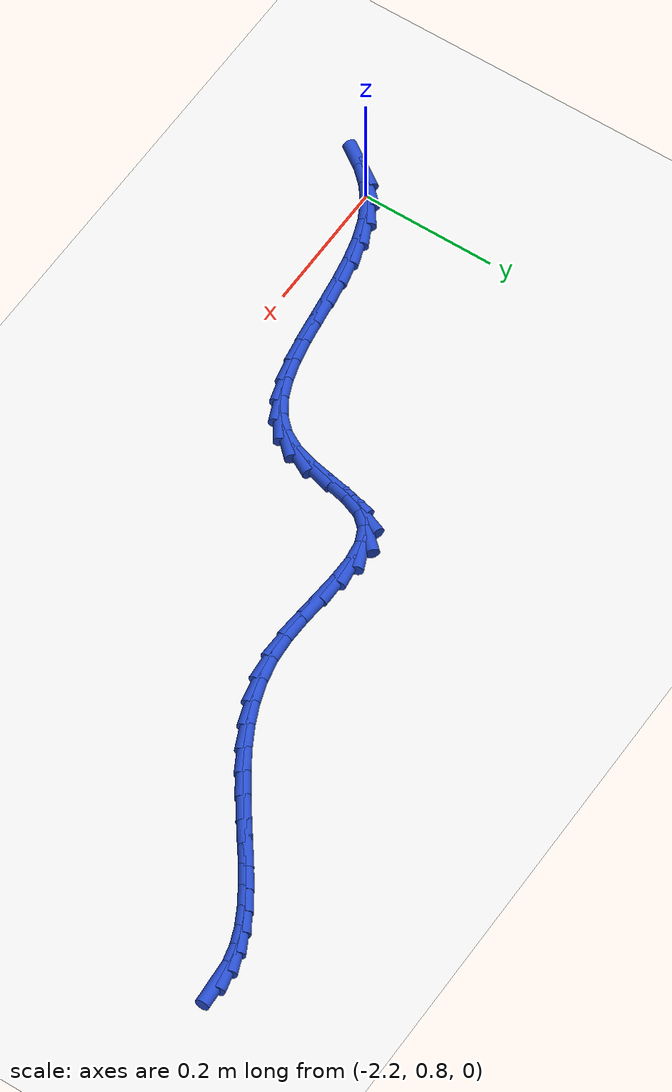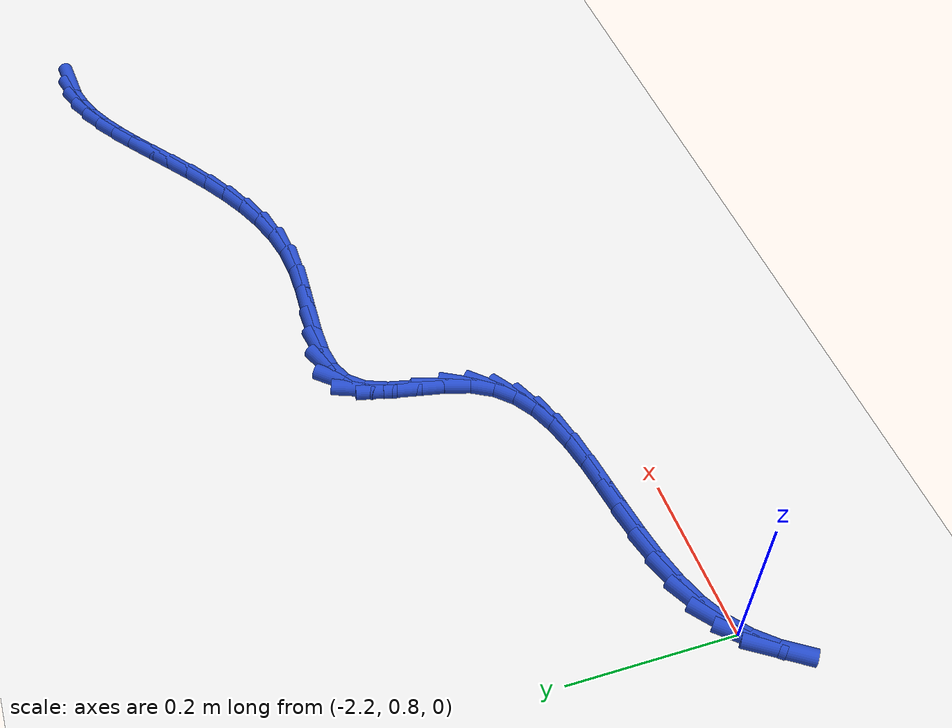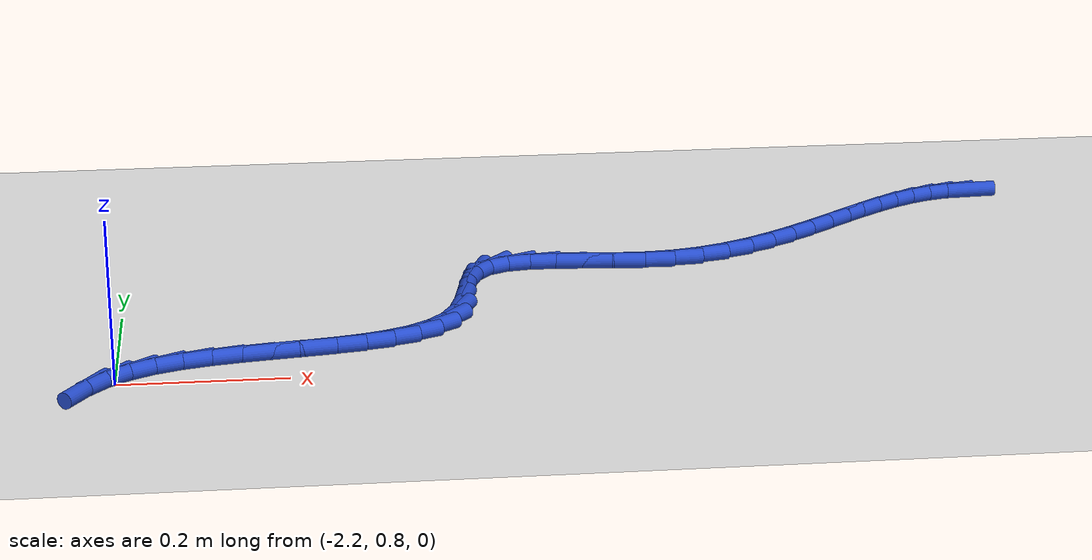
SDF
<sdf version="1.6">
 <world name="default">
  <model name="ground_plane">
   <static>1</static>
   <link name="link">
    <collision name="collision">
     <geometry><plane><normal>0 0 1</normal><size>100 100</size></plane></geometry>
     <surface><friction><ode><mu>100</mu><mu2>50</mu2></ode></friction></surface>
    </collision>
    <visual name="visual">
     <cast_shadows>0</cast_shadows>
     <geometry><plane><normal>0 0 1</normal><size>100 100</size></plane></geometry>
     <material>
      <script><uri>file://media/materials/scripts/gazebo.material</uri><name>Gazebo/WhiteGlow</name></script>
     </material>
    </visual>
   </link>
  </model>
  <model name="line">
   <link name="link_60">
    <pose>-1.083247722461375 1.3238746102809726 0.01 0 1.57 0.064274413914057</pose>
    <collision name="collision">
     <geometry><cylinder><radius>0.01</radius><length>0.08</length></cylinder></geometry>
    </collision>
    <visual name="visual">
     <material>
      <script><name>Gazebo/Blue</name><uri>file://media/materials/scripts/gazebo.material</uri></script>
     </material>
     <geometry><cylinder><radius>0.01</radius><length>0.08</length></cylinder></geometry>
    </visual>
   </link>
   <link name="link_61">
    <pose>-1.1099087832845687 1.3221586225414899 0.01 0 1.57 0.23439953047738915</pose>
    <collision name="collision">
     <geometry><cylinder><radius>0.01</radius><length>0.08</length></cylinder></geometry>
    </collision>
    <visual name="visual">
     <material>
      <script><name>Gazebo/Blue</name><uri>file://media/materials/scripts/gazebo.material</uri></script>
     </material>
     <geometry><cylinder><radius>0.01</radius><length>0.08</length></cylinder></geometry>
    </visual>
   </link>
   <link name="link_62">
    <pose>-1.136249660738163 1.3158687132778153 0.01 0 1.57 0.3723971614312031</pose>
    <collision name="collision">
     <geometry><cylinder><radius>0.01</radius><length>0.08</length></cylinder></geometry>
    </collision>
    <visual name="visual">
     <material>
      <script><name>Gazebo/Blue</name><uri>file://media/materials/scripts/gazebo.material</uri></script>
     </material>
     <geometry><cylinder><radius>0.01</radius><length>0.08</length></cylinder></geometry>
    </visual>
   </link>
   <link name="link_63">
    <pose>-1.1624107478600412 1.3056495773747598 0.01 0 1.57 0.4771172926010642</pose>
    <collision name="collision">
     <geometry><cylinder><radius>0.01</radius><length>0.08</length></cylinder></geometry>
    </collision>
    <visual name="visual">
     <material>
      <script><name>Gazebo/Blue</name><uri>file://media/materials/scripts/gazebo.material</uri></script>
     </material>
     <geometry><cylinder><radius>0.01</radius><length>0.08</length></cylinder></geometry>
    </visual>
   </link>
   <link name="link_64">
    <pose>-1.1885324376880875 1.292145909717135 0.01 0 1.57 0.5518338476270463</pose>
    <collision name="collision">
     <geometry><cylinder><radius>0.01</radius><length>0.08</length></cylinder></geometry>
    </collision>
    <visual name="visual">
     <material>
      <script><name>Gazebo/Blue</name><uri>file://media/materials/scripts/gazebo.material</uri></script>
     </material>
     <geometry><cylinder><radius>0.01</radius><length>0.08</length></cylinder></geometry>
    </visual>
   </link>
   <link name="link_65">
    <pose>-1.2147551232601854 1.2760024051897512 0.01 0 1.57 0.6008643223450567</pose>
    <collision name="collision">
     <geometry><cylinder><radius>0.01</radius><length>0.08</length></cylinder></geometry>
    </collision>
    <visual name="visual">
     <material>
      <script><name>Gazebo/Blue</name><uri>file://media/materials/scripts/gazebo.material</uri></script>
     </material>
     <geometry><cylinder><radius>0.01</radius><length>0.08</length></cylinder></geometry>
    </visual>
   </link>
   <link name="link_66">
    <pose>-1.2412191976142184 1.257863758677419 0.01 0 1.57 0.6279390061801916</pose>
    <collision name="collision">
     <geometry><cylinder><radius>0.01</radius><length>0.08</length></cylinder></geometry>
    </collision>
    <visual name="visual">
     <material>
      <script><name>Gazebo/Blue</name><uri>file://media/materials/scripts/gazebo.material</uri></script>
     </material>
     <geometry><cylinder><radius>0.01</radius><length>0.08</length></cylinder></geometry>
    </visual>
   </link>
   <link name="link_67">
    <pose>-1.2680650537880716 1.2383746650649505 0.01 0 1.57 0.6357114522345219</pose>
    <collision name="collision">
     <geometry><cylinder><radius>0.01</radius><length>0.08</length></cylinder></geometry>
    </collision>
    <visual name="visual">
     <material>
      <script><name>Gazebo/Blue</name><uri>file://media/materials/scripts/gazebo.material</uri></script>
     </material>
     <geometry><cylinder><radius>0.01</radius><length>0.08</length></cylinder></geometry>
    </visual>
   </link>
   <link name="link_68">
    <pose>-1.2954330848196272 1.2181798192371558 0.01 0 1.57 0.6257565298787848</pose>
    <collision name="collision">
     <geometry><cylinder><radius>0.01</radius><length>0.08</length></cylinder></geometry>
    </collision>
    <visual name="visual">
     <material>
      <script><name>Gazebo/Blue</name><uri>file://media/materials/scripts/gazebo.material</uri></script>
     </material>
     <geometry><cylinder><radius>0.01</radius><length>0.08</length></cylinder></geometry>
    </visual>
   </link>
   <link name="link_69">
    <pose>-1.3234636837467697 1.197923916078846 0.01 0 1.57 0.5987270906992552</pose>
    <collision name="collision">
     <geometry><cylinder><radius>0.01</radius><length>0.08</length></cylinder></geometry>
    </collision>
    <visual name="visual">
     <material>
      <script><name>Gazebo/Blue</name><uri>file://media/materials/scripts/gazebo.material</uri></script>
     </material>
     <geometry><cylinder><radius>0.01</radius><length>0.08</length></cylinder></geometry>
    </visual>
   </link>
   <link name="link_70">
    <pose>-1.352297243607383 1.178251650474832 0.01 0 1.57 0.5545649463969763</pose>
    <collision name="collision">
     <geometry><cylinder><radius>0.01</radius><length>0.08</length></cylinder></geometry>
    </collision>
    <visual name="visual">
     <material>
      <script><name>Gazebo/Blue</name><uri>file://media/materials/scripts/gazebo.material</uri></script>
     </material>
     <geometry><cylinder><radius>0.01</radius><length>0.08</length></cylinder></geometry>
    </visual>
   </link>
   <link name="link_71">
    <pose>-1.3820741574393502 1.1598077173099246 0.01 0 1.57 0.4927757323252972</pose>
    <collision name="collision">
     <geometry><cylinder><radius>0.01</radius><length>0.08</length></cylinder></geometry>
    </collision>
    <visual name="visual">
     <material>
      <script><name>Gazebo/Blue</name><uri>file://media/materials/scripts/gazebo.material</uri></script>
     </material>
     <geometry><cylinder><radius>0.01</radius><length>0.08</length></cylinder></geometry>
    </visual>
   </link>
   <link name="link_72">
    <pose>-1.4129348182805561 1.143236811468935 0.01 0 1.57 0.4128311047354362</pose>
    <collision name="collision">
     <geometry><cylinder><radius>0.01</radius><length>0.08</length></cylinder></geometry>
    </collision>
    <visual name="visual">
     <material>
      <script><name>Gazebo/Blue</name><uri>file://media/materials/scripts/gazebo.material</uri></script>
     </material>
     <geometry><cylinder><radius>0.01</radius><length>0.08</length></cylinder></geometry>
    </visual>
   </link>
   <link name="link_73">
    <pose>-1.4450196191688838 1.129183627836675 0.01 0 1.57 0.31476538429764966</pose>
    <collision name="collision">
     <geometry><cylinder><radius>0.01</radius><length>0.08</length></cylinder></geometry>
    </collision>
    <visual name="visual">
     <material>
      <script><name>Gazebo/Blue</name><uri>file://media/materials/scripts/gazebo.material</uri></script>
     </material>
     <geometry><cylinder><radius>0.01</radius><length>0.08</length></cylinder></geometry>
    </visual>
   </link>
   <link name="link_74">
    <pose>-1.478468953142217 1.118292861297954 0.01 0 1.57 0.19994710813490787</pose>
    <collision name="collision">
     <geometry><cylinder><radius>0.01</radius><length>0.08</length></cylinder></geometry>
    </collision>
    <visual name="visual">
     <material>
      <script><name>Gazebo/Blue</name><uri>file://media/materials/scripts/gazebo.material</uri></script>
     </material>
     <geometry><cylinder><radius>0.01</radius><length>0.08</length></cylinder></geometry>
    </visual>
   </link>
   <link name="link_75">
    <pose>-1.5134232132384402 1.1112092067375834 0.01 0 1.57 0.07300457109438033</pose>
    <collision name="collision">
     <geometry><cylinder><radius>0.01</radius><length>0.08</length></cylinder></geometry>
    </collision>
    <visual name="visual">
     <material>
      <script><name>Gazebo/Blue</name><uri>file://media/materials/scripts/gazebo.material</uri></script>
     </material>
     <geometry><cylinder><radius>0.01</radius><length>0.08</length></cylinder></geometry>
    </visual>
   </link>
   <link name="link_76">
    <pose>-1.5499997399508292 1.1085341991030917 0.01 0 1.57 -0.029553280550825078</pose>
    <collision name="collision">
     <geometry><cylinder><radius>0.01</radius><length>0.08</length></cylinder></geometry>
    </collision>
    <visual name="visual">
     <material>
      <script><name>Gazebo/Blue</name><uri>file://media/materials/scripts/gazebo.material</uri></script>
     </material>
     <geometry><cylinder><radius>0.01</radius><length>0.08</length></cylinder></geometry>
    </visual>
   </link>
   <link name="link_77">
    <pose>-1.587663304108347 1.1096476051483324 0.01 0 1.57 -0.07766106366596273</pose>
    <collision name="collision">
     <geometry><cylinder><radius>0.01</radius><length>0.08</length></cylinder></geometry>
    </collision>
    <visual name="visual">
     <material>
      <script><name>Gazebo/Blue</name><uri>file://media/materials/scripts/gazebo.material</uri></script>
     </material>
     <geometry><cylinder><radius>0.01</radius><length>0.08</length></cylinder></geometry>
    </visual>
   </link>
   <link name="link_78">
    <pose>-1.6251498862300193 1.1125647199558066 0.01 0 1.57 -0.07385912783194397</pose>
    <collision name="collision">
     <geometry><cylinder><radius>0.01</radius><length>0.08</length></cylinder></geometry>
    </collision>
    <visual name="visual">
     <material>
      <script><name>Gazebo/Blue</name><uri>file://media/materials/scripts/gazebo.material</uri></script>
     </material>
     <geometry><cylinder><radius>0.01</radius><length>0.08</length></cylinder></geometry>
    </visual>
   </link>
   <link name="link_79">
    <pose>-1.6611571118216935 1.1152290287496482 0.01 0 1.57 -0.010683798761452389</pose>
    <collision name="collision">
     <geometry><cylinder><radius>0.01</radius><length>0.08</length></cylinder></geometry>
    </collision>
    <visual name="visual">
     <material>
      <script><name>Gazebo/Blue</name><uri>file://media/materials/scripts/gazebo.material</uri></script>
     </material>
     <geometry><cylinder><radius>0.01</radius><length>0.08</length></cylinder></geometry>
    </visual>
   </link>
   <link name="link_80">
    <pose>-1.6943826063892162 1.1155840167539912 0.01 0 1.57 0.1367747282622148</pose>
    <collision name="collision">
     <geometry><cylinder><radius>0.01</radius><length>0.08</length></cylinder></geometry>
    </collision>
    <visual name="visual">
     <material>
      <script><name>Gazebo/Blue</name><uri>file://media/materials/scripts/gazebo.material</uri></script>
     </material>
     <geometry><cylinder><radius>0.01</radius><length>0.08</length></cylinder></geometry>
    </visual>
   </link>
   <link name="link_81">
    <pose>-1.7235239954384356 1.1115731691929693 0.01 0 1.57 0.41383791265733066</pose>
    <collision name="collision">
     <geometry><cylinder><radius>0.01</radius><length>0.08</length></cylinder></geometry>
    </collision>
    <visual name="visual">
     <material>
      <script><name>Gazebo/Blue</name><uri>file://media/materials/scripts/gazebo.material</uri></script>
     </material>
     <geometry><cylinder><radius>0.01</radius><length>0.08</length></cylinder></geometry>
    </visual>
   </link>
   <link name="link_82">
    <pose>-1.7472789044751975 1.1011399712907168 0.01 0 1.57 0.8352790517300918</pose>
    <collision name="collision">
     <geometry><cylinder><radius>0.01</radius><length>0.08</length></cylinder></geometry>
    </collision>
    <visual name="visual">
     <material>
      <script><name>Gazebo/Blue</name><uri>file://media/materials/scripts/gazebo.material</uri></script>
     </material>
     <geometry><cylinder><radius>0.01</radius><length>0.08</length></cylinder></geometry>
    </visual>
   </link>
   <link name="link_83">
    <pose>-1.7643667094252924 1.0822563921431014 0.01 0 1.57 1.1977828614466695</pose>
    <collision name="collision">
     <geometry><cylinder><radius>0.01</radius><length>0.08</length></cylinder></geometry>
    </collision>
    <visual name="visual">
     <material>
      <script><name>Gazebo/Blue</name><uri>file://media/materials/scripts/gazebo.material</uri></script>
     </material>
     <geometry><cylinder><radius>0.01</radius><length>0.08</length></cylinder></geometry>
    </visual>
   </link>
   <link name="link_84">
    <pose>-1.775060701569214 1.0549293742289647 0.01 0 1.57 1.354013802255659</pose>
    <collision name="collision">
     <geometry><cylinder><radius>0.01</radius><length>0.08</length></cylinder></geometry>
    </collision>
    <visual name="visual">
     <material>
      <script><name>Gazebo/Blue</name><uri>file://media/materials/scripts/gazebo.material</uri></script>
     </material>
     <geometry><cylinder><radius>0.01</radius><length>0.08</length></cylinder></geometry>
    </visual>
   </link>
   <link name="link_85">
    <pose>-1.7821979281814655 1.0225232985082355 0.01 0 1.57 1.37636402081071</pose>
    <collision name="collision">
     <geometry><cylinder><radius>0.01</radius><length>0.08</length></cylinder></geometry>
    </collision>
    <visual name="visual">
     <material>
      <script><name>Gazebo/Blue</name><uri>file://media/materials/scripts/gazebo.material</uri></script>
     </material>
     <geometry><cylinder><radius>0.01</radius><length>0.08</length></cylinder></geometry>
    </visual>
   </link>
   <link name="link_86">
    <pose>-1.7888551659453837 0.9887164903037805 0.01 0 1.57 1.2853075852287765</pose>
    <collision name="collision">
     <geometry><cylinder><radius>0.01</radius><length>0.08</length></cylinder></geometry>
    </collision>
    <visual name="visual">
     <material>
      <script><name>Gazebo/Blue</name><uri>file://media/materials/scripts/gazebo.material</uri></script>
     </material>
     <geometry><cylinder><radius>0.01</radius><length>0.08</length></cylinder></geometry>
    </visual>
   </link>
   <link name="link_87">
    <pose>-1.7981091915443053 0.9571872749384666 0.01 0 1.57 1.065150486237129</pose>
    <collision name="collision">
     <geometry><cylinder><radius>0.01</radius><length>0.08</length></cylinder></geometry>
    </collision>
    <visual name="visual">
     <material>
      <script><name>Gazebo/Blue</name><uri>file://media/materials/scripts/gazebo.material</uri></script>
     </material>
     <geometry><cylinder><radius>0.01</radius><length>0.08</length></cylinder></geometry>
    </visual>
   </link>
   <link name="link_88">
    <pose>-1.8125717709906397 0.9310653190490288 0.01 0 1.57 0.804881282948842</pose>
    <collision name="collision">
     <geometry><cylinder><radius>0.01</radius><length>0.08</length></cylinder></geometry>
    </collision>
    <visual name="visual">
     <material>
      <script><name>Gazebo/Blue</name><uri>file://media/materials/scripts/gazebo.material</uri></script>
     </material>
     <geometry><cylinder><radius>0.01</radius><length>0.08</length></cylinder></geometry>
    </visual>
   </link>
   <link name="link_89">
    <pose>-1.8323391527186337 0.9105122701370173 0.01 0 1.57 0.5767333142461029</pose>
    <collision name="collision">
     <geometry><cylinder><radius>0.01</radius><length>0.08</length></cylinder></geometry>
    </collision>
    <visual name="visual">
     <material>
      <script><name>Gazebo/Blue</name><uri>file://media/materials/scripts/gazebo.material</uri></script>
     </material>
     <geometry><cylinder><radius>0.01</radius><length>0.08</length></cylinder></geometry>
    </visual>
   </link>
   <link name="link_90">
    <pose>-1.8566608764776462 0.8946907576090638 0.01 0 1.57 0.4011172007493432</pose>
    <collision name="collision">
     <geometry><cylinder><radius>0.01</radius><length>0.08</length></cylinder></geometry>
    </collision>
    <visual name="visual">
     <material>
      <script><name>Gazebo/Blue</name><uri>file://media/materials/scripts/gazebo.material</uri></script>
     </material>
     <geometry><cylinder><radius>0.01</radius><length>0.08</length></cylinder></geometry>
    </visual>
   </link>
   <link name="link_91">
    <pose>-1.8847858430959104 0.8827626570189367 0.01 0 1.57 0.27726345576553385</pose>
    <collision name="collision">
     <geometry><cylinder><radius>0.01</radius><length>0.08</length></cylinder></geometry>
    </collision>
    <visual name="visual">
     <material>
      <script><name>Gazebo/Blue</name><uri>file://media/materials/scripts/gazebo.material</uri></script>
     </material>
     <geometry><cylinder><radius>0.01</radius><length>0.08</length></cylinder></geometry>
    </visual>
   </link>
   <link name="link_92">
    <pose>-1.9159629534016587 0.8738898439204041 0.01 0 1.57 0.19624699004339935</pose>
    <collision name="collision">
     <geometry><cylinder><radius>0.01</radius><length>0.08</length></cylinder></geometry>
    </collision>
    <visual name="visual">
     <material>
      <script><name>Gazebo/Blue</name><uri>file://media/materials/scripts/gazebo.material</uri></script>
     </material>
     <geometry><cylinder><radius>0.01</radius><length>0.08</length></cylinder></geometry>
    </visual>
   </link>
   <link name="link_93">
    <pose>-1.949441108223125 0.8672341938672353 0.01 0 1.57 0.14951520393230994</pose>
    <collision name="collision">
     <geometry><cylinder><radius>0.01</radius><length>0.08</length></cylinder></geometry>
    </collision>
    <visual name="visual">
     <material>
      <script><name>Gazebo/Blue</name><uri>file://media/materials/scripts/gazebo.material</uri></script>
     </material>
     <geometry><cylinder><radius>0.01</radius><length>0.08</length></cylinder></geometry>
    </visual>
   </link>
   <link name="link_94">
    <pose>-1.9844692083885422 0.8619575824131984 0.01 0 1.57 0.13142068479458316</pose>
    <collision name="collision">
     <geometry><cylinder><radius>0.01</radius><length>0.08</length></cylinder></geometry>
    </collision>
    <visual name="visual">
     <material>
      <script><name>Gazebo/Blue</name><uri>file://media/materials/scripts/gazebo.material</uri></script>
     </material>
     <geometry><cylinder><radius>0.01</radius><length>0.08</length></cylinder></geometry>
    </visual>
   </link>
   <link name="link_95">
    <pose>-2.0202961547261427 0.8572218851120617 0.01 0 1.57 0.1393816365813773</pose>
    <collision name="collision">
     <geometry><cylinder><radius>0.01</radius><length>0.08</length></cylinder></geometry>
    </collision>
    <visual name="visual">
     <material>
      <script><name>Gazebo/Blue</name><uri>file://media/materials/scripts/gazebo.material</uri></script>
     </material>
     <geometry><cylinder><radius>0.01</radius><length>0.08</length></cylinder></geometry>
    </visual>
   </link>
   <link name="link_96">
    <pose>-2.0561708480641605 0.8521889775175941 0.01 0 1.57 0.17361138625106767</pose>
    <collision name="collision">
     <geometry><cylinder><radius>0.01</radius><length>0.08</length></cylinder></geometry>
    </collision>
    <visual name="visual">
     <material>
      <script><name>Gazebo/Blue</name><uri>file://media/materials/scripts/gazebo.material</uri></script>
     </material>
     <geometry><cylinder><radius>0.01</radius><length>0.08</length></cylinder></geometry>
    </visual>
   </link>
   <link name="link_97">
    <pose>-2.0913421892308293 0.8460207351835641 0.01 0 1.57 0.23693681363323696</pose>
    <collision name="collision">
     <geometry><cylinder><radius>0.01</radius><length>0.08</length></cylinder></geometry>
    </collision>
    <visual name="visual">
     <material>
      <script><name>Gazebo/Blue</name><uri>file://media/materials/scripts/gazebo.material</uri></script>
     </material>
     <geometry><cylinder><radius>0.01</radius><length>0.08</length></cylinder></geometry>
    </visual>
   </link>
   <link name="link_98">
    <pose>-2.1250590790543806 0.8378790336637401 0.01 0 1.57 0.33453354017251913</pose>
    <collision name="collision">
     <geometry><cylinder><radius>0.01</radius><length>0.08</length></cylinder></geometry>
    </collision>
    <visual name="visual">
     <material>
      <script><name>Gazebo/Blue</name><uri>file://media/materials/scripts/gazebo.material</uri></script>
     </material>
     <geometry><cylinder><radius>0.01</radius><length>0.08</length></cylinder></geometry>
    </visual>
   </link>
   <link name="link_99">
    <pose>-2.156570418363047 0.82692574851189 0.01 0 1.57 0.47272943002305906</pose>
    <collision name="collision">
     <geometry><cylinder><radius>0.01</radius><length>0.08</length></cylinder></geometry>
    </collision>
    <visual name="visual">
     <material>
      <script><name>Gazebo/Blue</name><uri>file://media/materials/scripts/gazebo.material</uri></script>
     </material>
     <geometry><cylinder><radius>0.01</radius><length>0.08</length></cylinder></geometry>
    </visual>
   </link>
   <link name="link_100">
    <pose>-2.185125107985064 0.8123227552817833 0.01 0 1.57 0.6502288340937401</pose>
    <collision name="collision">
     <geometry><cylinder><radius>0.01</radius><length>0.08</length></cylinder></geometry>
    </collision>
    <visual name="visual">
     <material>
      <script><name>Gazebo/Blue</name><uri>file://media/materials/scripts/gazebo.material</uri></script>
     </material>
     <geometry><cylinder><radius>0.01</radius><length>0.08</length></cylinder></geometry>
    </visual>
   </link>
   <link name="link_101">
    <pose>-2.2100557469431132 0.7933613703568265 0.01 0 1.57 0.8263419962531832</pose>
    <collision name="collision">
     <geometry><cylinder><radius>0.01</radius><length>0.08</length></cylinder></geometry>
    </collision>
    <visual name="visual">
     <material>
      <script><name>Gazebo/Blue</name><uri>file://media/materials/scripts/gazebo.material</uri></script>
     </material>
     <geometry><cylinder><radius>0.01</radius><length>0.08</length></cylinder></geometry>
    </visual>
   </link>
   <link name="link_102">
    <pose>-2.2313127256410357 0.7702883360940085 0.01 0 1.57 0.9792288748775215</pose>
    <collision name="collision">
     <geometry><cylinder><radius>0.01</radius><length>0.08</length></cylinder></geometry>
    </collision>
    <visual name="visual">
     <material>
      <script><name>Gazebo/Blue</name><uri>file://media/materials/scripts/gazebo.material</uri></script>
     </material>
     <geometry><cylinder><radius>0.01</radius><length>0.08</length></cylinder></geometry>
    </visual>
   </link>
  </model>
 </world>
</sdf>
